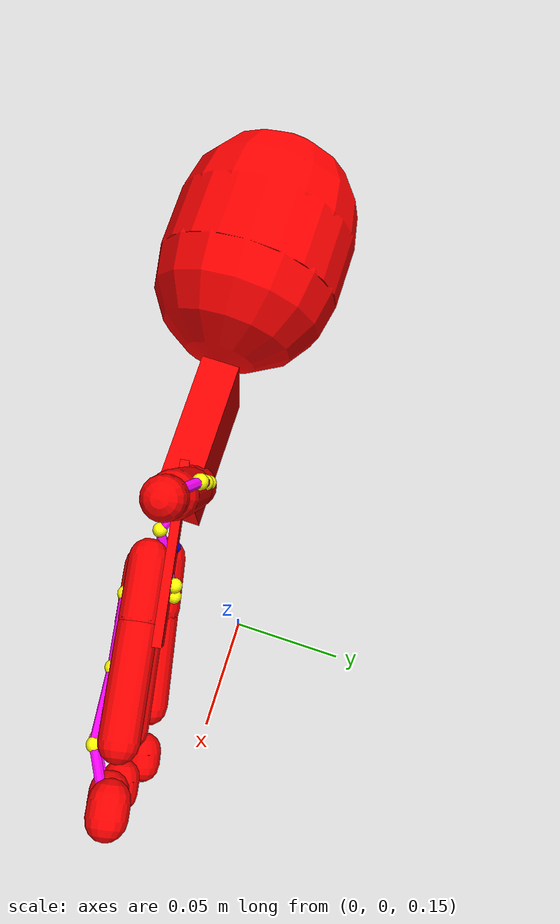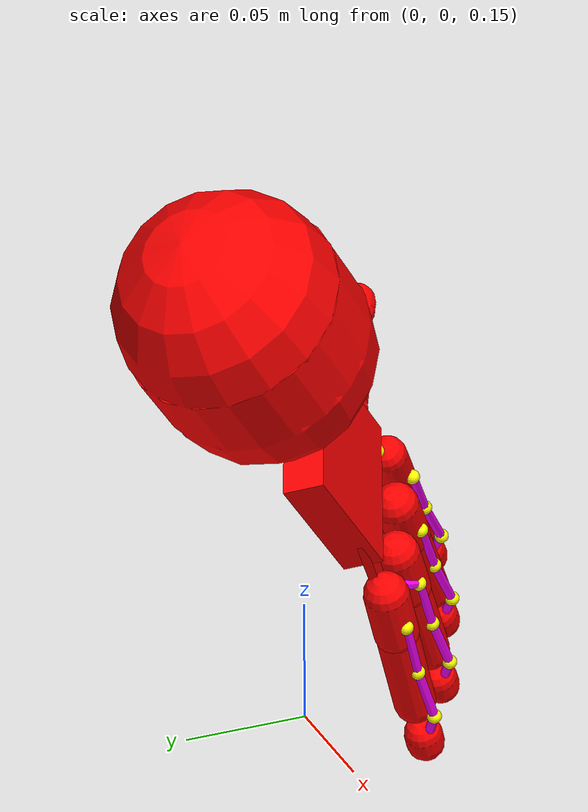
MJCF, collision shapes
<?xml version="1.0"?>
<mujoco model="RH8D Right Hand">
  <compiler angle="radian" meshdir="../meshes"/>

  <option timestep="0.001"
          integrator="implicitfast"
          solver="Newton"
          iterations="200"
          tolerance="1e-10"
          gravity="0 0 -9.81"
          cone="elliptic"
          impratio="1"
          noslip_iterations="0"
          noslip_tolerance="1e-6"/>

  <size njmax="8000" nconmax="1500"/>

  <!-- Default parameters for the simulation -->
  <default>
    <!-- Joint spring model (torsional return springs): open = springref=0 -->
    <joint damping="0.04" frictionloss="0.0008" armature="0.002" limited="true" springref="0"/>

    <geom contype="1" conaffinity="1" condim="6"
          friction="1.0 0.1 0.1"
          solref="0.01 1.0"
          solimp="0.9 0.95 0.001"
          margin="0.0005"/>

    <default class="guide_site">
      <site size="0.0030" rgba="1 1 0 1"/>
    </default>

    <default class="anchor_site">
      <site size="0.0045" rgba="1 0.2 0.2 1"/>
    </default>

    <default class="visual_mesh">
      <geom type="mesh" contype="0" conaffinity="0"/>
    </default>

    <default class="hand_collision">
      <geom type="capsule"
            contype="2" conaffinity="5"
            condim="6"
            friction="0.4 0.05 0.05"
            solref="0.001 1"
            solimp="0.95 0.99 0.001"
            margin="0.0005"
            rgba="1 0 0 0"/>
    </default>
  </default>

  <!-- Asset definitions -->
  <asset>
    <mesh name="base" file="base.stl" scale="0.001 0.001 0.001"/>
    <mesh name="forearm" file="forearm.stl" scale="0.001 0.001 0.001"/>
    <mesh name="palm_axis" file="palm_axis.stl" scale="0.001 0.001 0.001"/>
    <mesh name="palm_assembly" file="palm_assembly.stl" scale="0.001 0.001 0.001"/>
    <mesh name="thumb_base" file="thumb_base.stl" scale="0.001 0.001 0.001"/>
    <mesh name="thumb_phalanx" file="thumb_phalanx.stl" scale="0.001 0.001 0.001"/>
    <mesh name="tip" file="tip.stl" scale="0.001 0.001 0.001"/>
    <mesh name="phalanx" file="phalanx.stl" scale="0.001 0.001 0.001"/>
  </asset>

  <!-- World body definitions -->
  <worldbody>
    <geom class="visual_mesh"
          pos="-0.230 -0.0385 0.22"
          quat="0 0.707107 0 0.707107"
          rgba="0.74902 0.74902 0.74902 1"
          mesh="base"/>

    <body name="forearm:1" pos="-0.230 -0.0385 0.22" quat="-0.5 0.5 -0.5 -0.5">
      <inertial pos="1.87963e-07 -0.0656522 -0.00271352"
                quat="0.498346 0.501671 -0.501575 0.498397"
                mass="0.740385"
                diaginertia="0.00146215 0.00130925 0.000680264"/>
      <joint name="forearm:1--base:1" axis="0 -1 0" range="-1.5708 1.5708" damping="0.08" frictionloss="0.005"/>
      <geom class="visual_mesh" rgba="0.74902 0.74902 0.74902 1" mesh="forearm"/>
      <geom name="collision_forearm" class="hand_collision" type="capsule"
            fromto="0 -0.085 -0.005   0 -0.055 -0.005" size="0.0425" rgba="1 0 0 0"/>

      <body name="palm_axis:1" pos="0 -0.165 -0.01275">
        <inertial pos="0 0.008585 0.0125"
                  quat="0 0.707107 0 0.707107"
                  mass="0.0509809"
                  diaginertia="1.88432e-05 1.37535e-05 9.79681e-06"/>
        <joint name="palm_axis:1--forearm:1" axis="0 0 1" range="-1.5708 1.5708" damping="0.08" frictionloss="0.005"/>
        <geom class="visual_mesh" pos="0 0 0.0125" quat="1 0 0 0" rgba="0.74902 0.74902 0.74902 1" mesh="palm_axis"/>
        <geom name="collision_palm_axis" class="hand_collision" type="box"
              pos="0 0 0.0125" size="0.030 0.030 0.008" rgba="1 0 0 0"/>

        <body name="palm_assembly:1" pos="0.0265 0 0.0125" quat="0.764847 0.63682 0.022682 -0.094633">
          <inertial pos="-0.0428433 -0.00466111 0.0454719"
                    quat="0.48276 0.542533 0.210306 0.654502"
                    mass="0.0820994"
                    diaginertia="9.95214e-05 8.17343e-05 3.63353e-05"/>
          <joint name="palm_assembly:1--palm_axis:1"
                 axis="-0.98106 -0.173648 0.0858319"
                 range="-0.785398 0.785398"
                 damping="0.08" frictionloss="0.005"/>
          <geom class="visual_mesh"
                pos="-0.0586362 -0.00572413 0.0653212"
                quat="1 0 0 0"
                rgba="0.74902 0.74902 0.74902 1"
                mesh="palm_assembly"/>

          <!-- Palm collision -->
          <geom name="collision_palm" class="hand_collision" type="box"
                pos="-0.03 -0.01 0.055"
                euler="-1.57 -0.1 0.1"
                size="0.04 0.035 0.0018"
                rgba="1 0 0 0"/>

          <!-- Tendon origins -->
          <site name="palm_flexor_origin_idx"        class="guide_site" pos="-0.052 -0.009 0.0685"/>
          <site name="palm_flexor_origin_mid"        class="guide_site" pos="-0.032 -0.009 0.068"/>
          <site name="palm_flexor_origin_ring_small" class="guide_site" pos=" 0.006 -0.009 0.053"/>
          <site name="palm_flexor_origin_thumb"      class="guide_site" pos="-0.034 -0.007 0.07"/>

          <site name="palm_range_site" pos="-0.0210 -0.009 0.0475" euler="-1.5708 0 0" size="0.003" rgba="0 0 1 1"/>

          <!-- Thumb -->
          <body name="Thumb_axis" pos="-0.0403593 -0.0128548 0.0384218" quat="0.488081 0.532913 -0.239627 -0.648352">
            <inertial pos="7.36614e-07 -0.0127284 0.0077996"
                      quat="0.90682 0.421512 -0.00114761 0.00208364"
                      mass="0.00876232"
                      diaginertia="7.9766e-07 7.76944e-07 4.56571e-07"/>
            <joint name="Thumb_axis--palm_assembly:1" axis="0 -0.866025 0.5" range="-0.001 1.5708" damping="0.10" frictionloss="0.005"/>
            <geom class="visual_mesh" pos="-2.0491e-07 -0.0143541 0.0211785" rgba="0.74902 0.74902 0.74902 1" mesh="thumb_base"/>

            <site name="th_guide_p" class="guide_site" pos="0.000 0.0060 0.0120"/>

            <body name="Thumb_Methacarpal" pos="-0.00512514 -0.0143543 0.0211784" quat="0 -1 0 0">
              <inertial pos="0.00506187 -0.00020374 -0.0087338"
                        quat="0.707662 0.0382635 -0.0379957 0.70449"
                        mass="0.00441372"
                        diaginertia="4.34031e-07 4.06754e-07 1.50155e-07"/>
              <joint name="Thumb_Methacarpal--Thumb_axis" axis="-1 0 0" range="0 1.5708" damping="0.10" stiffness="0.65"/>
              <geom class="visual_mesh" pos="0.00506254 1.23613e-07 -0.010793" rgba="0.74902 0.74902 0.74902 1" mesh="thumb_phalanx"/>
              <geom name="collision_thumb_meta" class="hand_collision" type="capsule"
                    fromto="0.005 0 0.002   0.005 0 0.026" size="0.009" rgba="1 0 0 0"/>

              <site name="th_guide_m" class="guide_site" pos="0.000 0.0060 0.0100"/>

              <body name="Thumb_Proximal" pos="-0.000562562 -2.35897e-07 -0.0215861">
                <inertial pos="0.00506186 -0.000203737 -0.0087338"
                          quat="0.707662 0.0382635 -0.0379957 0.70449"
                          mass="0.00441372"
                          diaginertia="4.34031e-07 4.06754e-07 1.50155e-07"/>
                <joint name="Thumb_Proximal--Thumb_Methacarpal" axis="-1 0 0" range="0 1.5708" damping="0.08" stiffness="0.55"/>
                <geom class="visual_mesh" pos="0.00506253 1.26601e-07 -0.010793" rgba="0.74902 0.74902 0.74902 1" mesh="thumb_phalanx"/>
                <geom name="collision_thumb_prox" class="hand_collision" type="capsule"
                      fromto="0.005 0 -0.016   0.005 0 0.026" size="0.009" rgba="1 0 0 0"/>

                <site name="th_guide_d" class="guide_site" pos="0.000 0.0075 0.0080"/>

                <body name="Thumb_Distal" pos="-6.23674e-05 6.16563e-07 -0.0215858">
                  <inertial pos="0.00560256 -0.00262057 -0.0121248"
                            quat="0.634633 -0.0915234 0.0968285 0.761242"
                            mass="0.00650951"
                            diaginertia="5.45458e-07 5.01126e-07 3.14326e-07"/>
                  <joint name="Thumb_Distal--Thumb_Proximal" axis="-1 0 0" range="0 1.5708" damping="0.06" stiffness="0.45"/>
                  <geom class="visual_mesh" pos="0.00506251 -1.31623e-07 0" rgba="0.74902 0.74902 0.74902 1" mesh="tip"/>

                  <site name="th_guide_distal" class="guide_site" pos="0.000 0.0090 0.0060"/>
                  <site name="th_anchor" class="anchor_site" pos="0.0045 0.0015 -0.012"/>

                  <body name="Thumb_TipDummy" pos="0 0 0">
                    <inertial pos="0 0 0" mass="1e-6" diaginertia="1e-12 1e-12 1e-12"/>
                    <geom name="collision_thumb_tip" class="hand_collision" type="capsule"
                          fromto="0.005 0 -0.016   0.005 0 -0.01" size="0.00778" rgba="1 0 0 0"/>
                    <site name="thumb_tip_force_site" pos="0.005 -0.0015 -0.014" quat="0 0 1 1" size="0.00778" rgba="1 0 0 0"/>
                  </body>
                </body>
              </body>
            </body>
          </body>

          <!-- Index Finger -->
          <body name="Index_Proximal" pos="-0.0482113 -0.0207166 0.0857786" quat="0 1 0 0">
            <inertial pos="-0.00506278 -0.000180346 -0.0109169"
                      quat="0.709609 0.0289913 -0.0286909 0.703414"
                      mass="0.00525864"
                      diaginertia="5.65636e-07 5.33996e-07 1.82249e-07"/>
            <joint name="Index_Proximal--palm_assembly:1" axis="-1 0 0" range="0 1.5708" damping="0.10" stiffness="0.65"/>
            <geom class="visual_mesh" pos="-0.00506263 -1.44878e-07 -0.0129367" rgba="0.74902 0.74902 0.74902 1" mesh="phalanx"/>
            <geom name="collision_idx_prox" class="hand_collision" type="capsule"
                  fromto="-0.005 0 0.002   -0.005 0 0.026" size="0.00778" rgba="1 0 0 0"/>

            <site name="idx_guide_p" class="guide_site" pos="0.000 0.0065 0.0120"/>

            <body name="Index_Middle" pos="6.24645e-05 0 -0.0258748">
              <inertial pos="-0.00506279 -0.000180375 -0.0109169"
                        quat="0.709609 0.0289913 -0.0286909 0.703414"
                        mass="0.00525864"
                        diaginertia="5.65636e-07 5.33996e-07 1.82249e-07"/>
              <joint name="Index_Middle--Index_Proximal" axis="-1 0 0" range="0 1.5708" damping="0.08" stiffness="0.55"/>
              <geom class="visual_mesh" pos="-0.00506242 0 -0.0129376" rgba="0.74902 0.74902 0.74902 1" mesh="phalanx"/>
              <geom name="collision_idx_mid" class="hand_collision" type="capsule"
                    fromto="-0.005 0 -0.016   -0.005 0 0.026" size="0.00778" rgba="1 0 0 0"/>

              <site name="idx_guide_m" class="guide_site" pos="0.000 0.0065 0.0100"/>

              <body name="Index_Distal" pos="6.2463e-05 0 -0.0258748">
                <inertial pos="-0.00452224 -0.00262003 -0.0121245"
                          quat="0.634633 -0.0915234 0.0968285 0.761242"
                          mass="0.00650951"
                          diaginertia="5.45458e-07 5.01126e-07 3.14326e-07"/>
                <joint name="Index_Distal--Index_Middle" axis="-1 0 0" range="0 1.5708" damping="0.06" stiffness="0.45"/>
                <geom class="visual_mesh" pos="-0.00506253 0 4.01497e-07" rgba="0.74902 0.74902 0.74902 1" mesh="tip"/>

                <site name="idx_guide_d" class="guide_site" pos="0.000 0.0085 0.0080"/>
                <site name="idx_anchor" class="anchor_site" pos="-0.0045 0.0015 -0.012"/>

                <body name="Index_TipDummy" pos="0 0 0">
                  <inertial pos="0 0 0" mass="1e-6" diaginertia="1e-12 1e-12 1e-12"/>
                  <geom name="collision_idx_tip" class="hand_collision" type="capsule"
                        fromto="-0.005 0 -0.016   -0.005 0 -0.01" size="0.00778" rgba="1 0 0 0"/>
                  <site name="index_tip_force_site" pos="-0.005 -0.002 -0.014" quat="0 0 1 1" size="0.00725" rgba="1 0 0 0"/>
                </body>
              </body>
            </body>
          </body>

          <!-- Middle Finger -->
          <body name="Middle_Proximal" pos="-0.0230982 -0.0192207 0.084179" quat="0.00190282 -0.998097 -0.0435779 0.043578">
            <inertial pos="-0.00506279 -0.000180392 -0.0109167"
                      quat="0.709609 0.0289913 -0.0286909 0.703414"
                      mass="0.00525864"
                      diaginertia="5.65636e-07 5.33996e-07 1.82249e-07"/>
            <joint name="Middle_Proximal--palm_assembly:1" axis="-1 0 0" range="0 1.5708" damping="0.10" stiffness="0.65"/>
            <geom class="visual_mesh" pos="-0.00506247 0 -0.0129372" rgba="0.74902 0.74902 0.74902 1" mesh="phalanx"/>
            <geom name="collision_mid_prox" class="hand_collision" type="capsule"
                  fromto="-0.005 0 0.002   -0.005 0 0.026" size="0.009" rgba="1 0 0 0"/>

            <site name="mid_guide_p" class="guide_site" pos="0.000 0.0065 0.0120"/>

            <body name="Middle_Middle" pos="6.24843e-05 -1.52847e-07 -0.0258742">
              <inertial pos="-0.00506283 -0.000180213 -0.0109177"
                        quat="0.709609 0.0289913 -0.0286909 0.703414"
                        mass="0.00525864"
                        diaginertia="5.65636e-07 5.33996e-07 1.82249e-07"/>
              <joint name="Middle_Middle--Middle_Proximal" axis="-1 0 0" range="0 1.5708" damping="0.08" stiffness="0.55"/>
              <geom class="visual_mesh" pos="-0.00506251 1.09878e-07 -0.0129382" rgba="0.74902 0.74902 0.74902 1" mesh="phalanx"/>
              <geom name="collision_mid_mid" class="hand_collision" type="capsule"
                    fromto="-0.005 0 -0.016   -0.005 0 0.026" size="0.0085" rgba="1 0 0 0"/>

              <site name="mid_guide_m" class="guide_site" pos="0.000 0.0065 0.0100"/>

              <body name="Middle_Distal" pos="6.24995e-05 0 -0.0258752">
                <inertial pos="-0.00452227 -0.00261993 -0.0121249"
                          quat="0.634633 -0.0915234 0.0968285 0.761242"
                          mass="0.00650951"
                          diaginertia="5.45458e-07 5.01126e-07 3.14326e-07"/>
                <joint name="Middle_Distal--Middle_Middle" axis="-1 0 0" range="0 1.5708" damping="0.06" stiffness="0.45"/>
                <geom class="visual_mesh" pos="-0.00506248 0 -6.09795e-07" rgba="0.74902 0.74902 0.74902 1" mesh="tip"/>

                <site name="mid_guide_d" class="guide_site" pos="0.000 0.0085 0.0080"/>
                <site name="mid_anchor" class="anchor_site" pos="-0.0045 0.0015 -0.012"/>

                <body name="Middle_TipDummy" pos="0 0 0">
                  <inertial pos="0 0 0" mass="1e-6" diaginertia="1e-12 1e-12 1e-12"/>
                  <geom name="collision_mid_tip" class="hand_collision" type="capsule"
                        fromto="-0.005 0 -0.016   -0.005 0 -0.01" size="0.00778" rgba="1 0 0 0"/>
                  <site name="middle_tip_force_site" pos="-0.005 -0.002 -0.014" quat="0 0 1 1" size="0.00725" rgba="1 0 0 0"/>
                </body>
              </body>
            </body>
          </body>

          <!-- Ring Finger -->
          <body name="Ring_Proximal" pos="0.000973217 -0.0139442 0.0805959" quat="-7.86943e-05 -0.987791 -0.129626 0.0864102">
            <inertial pos="-0.00506284 -0.000180314 -0.0109171"
                      quat="0.709609 0.0289913 -0.0286909 0.703414"
                      mass="0.00525864"
                      diaginertia="5.65636e-07 5.33996e-07 1.82249e-07"/>
            <joint name="Ring_Proximal--palm_assembly:1" axis="-1 0 0" range="0 1.5708" damping="0.10" stiffness="0.65"/>
            <geom class="visual_mesh" pos="-0.00506248 0 -0.0129378" rgba="0.74902 0.74902 0.74902 1" mesh="phalanx"/>
            <geom name="collision_ring_prox" class="hand_collision" type="capsule"
                  fromto="-0.005 0 0.002   -0.005 0 0.026" size="0.009" rgba="1 0 0 0"/>

            <site name="ring_guide_p" class="guide_site" pos="0.000 0.0065 0.0120"/>

            <body name="Ring_Middle" pos="6.24428e-05 0 -0.0258755">
              <inertial pos="-0.00506274 -0.000180305 -0.0109171"
                        quat="0.709609 0.0289913 -0.0286909 0.703414"
                        mass="0.00525864"
                        diaginertia="5.65636e-07 5.33996e-07 1.82249e-07"/>
              <joint name="Ring_Middle--Ring_Proximal" axis="-1 0 0" range="0 1.5708" damping="0.08" stiffness="0.35"/>
              <geom class="visual_mesh" pos="-0.00506238 -1.10193e-07 -0.0129369" rgba="0.74902 0.74902 0.74902 1" mesh="phalanx"/>
              <geom name="collision_ring_mid" class="hand_collision" type="capsule"
                    fromto="-0.005 0 -0.016   -0.005 0 0.026" size="0.0085" rgba="1 0 0 0"/>

              <site name="ring_guide_m" class="guide_site" pos="0.000 0.0065 0.0100"/>

              <body name="Ring_Distal" pos="6.25413e-05 0 -0.0258745">
                <inertial pos="-0.00452232 -0.00261989 -0.0121254"
                          quat="0.634633 -0.0915234 0.0968285 0.761242"
                          mass="0.00650951"
                          diaginertia="5.45458e-07 5.01126e-07 3.14326e-07"/>
                <joint name="Ring_Distal--Ring_Middle" axis="-1 0 0" range="0 1.5708" damping="0.06" stiffness="0.35"/>
                <geom class="visual_mesh" pos="-0.00506254 1.36101e-07 -7.35729e-07" rgba="0.74902 0.74902 0.74902 1" mesh="tip"/>

                <site name="ring_guide_d" class="guide_site" pos="0.000 0.0085 0.0080"/>
                <site name="ring_anchor" class="anchor_site" pos="-0.0045 0.0015 -0.012"/>

                <body name="Ring_TipDummy" pos="0 0 0">
                  <inertial pos="0 0 0" mass="1e-6" diaginertia="1e-12 1e-12 1e-12"/>
                  <geom name="collision_ring_tip" class="hand_collision" type="capsule"
                        fromto="-0.005 0 -0.016   -0.005 0 -0.01" size="0.00778" rgba="1 0 0 0"/>
                  <site name="ring_tip_force_site" pos="-0.005 -0.002 -0.014" quat="0 0 1 1" size="0.00725" rgba="1 0 0 0"/>
                </body>
              </body>
            </body>
          </body>

          <!-- Small Finger -->
          <body name="Small_Proximal" pos="0.0235505 -0.00577399 0.0699045" quat="-0.00757449 -0.976383 -0.173483 0.128543">
            <inertial pos="-0.00506278 -0.00018031 -0.0109171"
                      quat="0.709609 0.0289913 -0.0286909 0.703414"
                      mass="0.00525864"
                      diaginertia="5.65636e-07 5.33996e-07 1.82249e-07"/>
            <joint name="Small_Proximal--palm_assembly:1" axis="-1 0 0" range="0 1.5708" damping="0.10" stiffness="0.3"/>
            <geom class="visual_mesh" pos="-0.00506256 0 -0.0129378" rgba="0.74902 0.74902 0.74902 1" mesh="phalanx"/>
            <geom name="collision_sml_prox" class="hand_collision" type="capsule"
                  fromto="-0.005 0 0.002   -0.005 0 0.026" size="0.009" rgba="1 0 0 0"/>

            <site name="sml_guide_p" class="guide_site" pos="0.000 0.0065 0.0120"/>

            <body name="Small_Middle" pos="6.24423e-05 0 -0.0258752">
              <inertial pos="-0.00506278 -0.00018031 -0.0109171"
                        quat="0.709609 0.0289913 -0.0286909 0.703414"
                        mass="0.00525864"
                        diaginertia="5.65636e-07 5.33996e-07 1.82249e-07"/>
              <joint name="Small_Middle--Small_Proximal" axis="-1 0 0" range="0 1.5708" damping="0.08" stiffness="0.1"/>
              <geom class="visual_mesh" pos="-0.00506255 0 -0.0129378" rgba="0.74902 0.74902 0.74902 1" mesh="phalanx"/>
              <geom name="collision_sml_mid" class="hand_collision" type="capsule"
                    fromto="-0.005 0 -0.016   -0.005 0 0.026" size="0.0085" rgba="1 0 0 0"/>

              <site name="sml_guide_m" class="guide_site" pos="0.000 0.0065 0.0100"/>

              <body name="Small_Distal" pos="6.2445e-05 0 -0.0258753">
                <inertial pos="-0.00452232 -0.00262 -0.0121245"
                          quat="0.634633 -0.0915234 0.0968285 0.761242"
                          mass="0.00650951"
                          diaginertia="5.45458e-07 5.01126e-07 3.14326e-07"/>
                <joint name="Small_Distal--Small_Middle" axis="-1 0 0" range="0 1.5708" damping="0.06" stiffness="0.15"/>
                <geom class="visual_mesh" pos="-0.00506244 0 0" rgba="0.74902 0.74902 0.74902 1" mesh="tip"/>

                <site name="sml_guide_d" class="guide_site" pos="0.000 0.0085 0.0080"/>
                <site name="sml_anchor" class="anchor_site" pos="-0.0045 0.0015 -0.012"/>

                <body name="Small_TipDummy" pos="0 0 0">
                  <inertial pos="0 0 0" mass="1e-6" diaginertia="1e-12 1e-12 1e-12"/>
                  <geom name="collision_sml_tip" class="hand_collision" type="capsule"
                        fromto="-0.005 0 -0.016   -0.005 0 -0.01" size="0.00778" rgba="1 0 0 0"/>
                  <site name="small_tip_force_site" pos="-0.005 -0.002 -0.014" quat="0 0 1 1" size="0.00725" rgba="1 0 0 0"/>
                </body>
              </body>
            </body>
          </body>

        </body>
      </body>
    </body>
  </worldbody>

  <!-- RH8D: Spatial tendons -->
  <tendon>
    <spatial name="idx_flex_spatial" rgba="1 0 1 1" width="0.002" damping="6" frictionloss="0.3">
      <site site="palm_flexor_origin_idx"/>
      <site site="idx_guide_p"/>
      <site site="idx_guide_m"/>
      <site site="idx_guide_d"/>
      <site site="idx_anchor"/>
    </spatial>

    <spatial name="mid_flex_spatial" rgba="1 0 1 1" width="0.002" damping="6" frictionloss="0.3">
      <site site="palm_flexor_origin_mid"/>
      <site site="mid_guide_p"/>
      <site site="mid_guide_m"/>
      <site site="mid_guide_d"/>
      <site site="mid_anchor"/>
    </spatial>

    <spatial name="ring_flex_spatial" rgba="1 0 1 1" width="0.002" damping="6" frictionloss="0.3">
      <site site="palm_flexor_origin_ring_small"/>
      <site site="ring_guide_p"/>
      <site site="ring_guide_m"/>
      <site site="ring_guide_d"/>
      <site site="ring_anchor"/>
    </spatial>

    <spatial name="sml_flex_spatial" rgba="1 0 1 1" width="0.002" damping="6" frictionloss="0.3">
      <site site="palm_flexor_origin_ring_small"/>
      <site site="sml_guide_p"/>
      <site site="sml_guide_m"/>
      <site site="sml_guide_d"/>
      <site site="sml_anchor"/>
    </spatial>

    <spatial name="th_flex_spatial" rgba="1 0 1 1" width="0.002" damping="6" frictionloss="0.3">
      <site site="palm_flexor_origin_thumb"/>
      <site site="th_guide_p"/>
      <site site="th_guide_m"/>
      <site site="th_guide_d"/>
      <site site="th_guide_distal"/>
      <site site="th_anchor"/>
    </spatial>
  </tendon>

  <!-- RH8D: ring and small finger are driven by the same actuator -->
  <equality>
    <tendon tendon1="sml_flex_spatial" tendon2="ring_flex_spatial"
            polycoef="0 1 0 0 0"
            solref="0.08 1.0"
            solimp="0.90 0.99 0.002"/>
  </equality>

  <!-- Actuators for RH8D -->
  <actuator>
    <!-- RH8D: wrist/palm actuators -->
    <position name="pos_forearm" joint="forearm:1--base:1"
              kp="5" kv="1" forcelimited="true" forcerange="-5 5"
              ctrllimited="true" ctrlrange="-1.5708 1.5708"/>

    <position name="pos_palm_axis" joint="palm_axis:1--forearm:1"
              kp="5" kv="1" forcelimited="true" forcerange="-5 5"
              ctrllimited="true" ctrlrange="-1.5708 1.5708"/>

    <position name="pos_palm_assembly" joint="palm_assembly:1--palm_axis:1"
              kp="5" kv="1" forcelimited="true" forcerange="-5 5"
              ctrllimited="true" ctrlrange="-0.785398 0.785398"/>

    <position name="pos_thumb_axis" joint="Thumb_axis--palm_assembly:1"
              kp="5" kv="1" forcelimited="true" forcerange="-5 5"
              ctrllimited="true" ctrlrange="0.0 1.5708"/>

    <!-- RH8D: Tendon driven finger actuators -->
    <position name="pos_index_tendon" tendon="idx_flex_spatial"
              kp="80" dampratio="0.5" forcelimited="true" forcerange="0 180"
              ctrllimited="true" ctrlrange="0.0 1.5708"/>

    <position name="pos_middle_tendon" tendon="mid_flex_spatial"
              kp="80" dampratio="0.5" forcelimited="true" forcerange="0 180"
              ctrllimited="true" ctrlrange="0.0 1.5708"/>

    <position name="pos_ring_small_tendon" tendon="ring_flex_spatial"
              kp="80" dampratio="0.5" forcelimited="true" forcerange="0 180"
              ctrllimited="true" ctrlrange="0.0 1.5708"/>

    <position name="pos_thumb_tendon" tendon="th_flex_spatial"
              kp="60" dampratio="0.5" forcelimited="true" forcerange="0 180"
              ctrllimited="true" ctrlrange="0.0 1.5708"/>
  </actuator>

  <!-- RH8D: Sensors including TOF and force sensors -->
  <sensor>
    <!-- Tendon positions -->
    <tendonpos name="len_index"  tendon="idx_flex_spatial"/>
    <tendonpos name="len_middle" tendon="mid_flex_spatial"/>
    <tendonpos name="len_ring"   tendon="ring_flex_spatial"/>
    <tendonpos name="len_small"  tendon="sml_flex_spatial"/>
    <tendonpos name="len_thumb"  tendon="th_flex_spatial"/>

    <!-- Tendon actuator forces -->
    <actuatorfrc name="frc_index"  actuator="pos_index_tendon"/>
    <actuatorfrc name="frc_middle" actuator="pos_middle_tendon"/>
    <actuatorfrc name="frc_ring"   actuator="pos_ring_small_tendon"/>
    <actuatorfrc name="frc_thumb"  actuator="pos_thumb_tendon"/>

    <!-- Palm distance sensor -->
    <rangefinder name="palm_range" site="palm_range_site"/>

    <!-- 3-axis fingertip force sensors -->
    <force name="thumb_tip_force"  site="thumb_tip_force_site"/>
    <force name="index_tip_force"  site="index_tip_force_site"/>
    <force name="middle_tip_force" site="middle_tip_force_site"/>
    <force name="ring_tip_force"   site="ring_tip_force_site"/>
    <force name="small_tip_force"  site="small_tip_force_site"/>
  </sensor>

  <!-- RH8D: Contact excludes -->
  <contact>
    <exclude body1="forearm:1" body2="palm_axis:1"/>
    <exclude body1="palm_axis:1" body2="palm_assembly:1"/>
    <exclude body1="Thumb_axis" body2="Thumb_Methacarpal"/>
    <exclude body1="Thumb_Methacarpal" body2="Thumb_Proximal"/>
    <exclude body1="Thumb_Proximal" body2="Thumb_Distal"/>
    <exclude body1="Index_Proximal" body2="Index_Middle"/>
    <exclude body1="Index_Middle" body2="Index_Distal"/>
    <exclude body1="Middle_Proximal" body2="Middle_Middle"/>
    <exclude body1="Middle_Middle" body2="Middle_Distal"/>
    <exclude body1="Ring_Proximal" body2="Ring_Middle"/>
    <exclude body1="Ring_Middle" body2="Ring_Distal"/>
    <exclude body1="Small_Proximal" body2="Small_Middle"/>
    <exclude body1="Small_Middle" body2="Small_Distal"/>

    <exclude body1="palm_assembly:1" body2="Index_Proximal"/>
    <exclude body1="palm_assembly:1" body2="Index_Middle"/>
    <exclude body1="palm_assembly:1" body2="Index_Distal"/>
    <exclude body1="palm_assembly:1" body2="Middle_Proximal"/>
    <exclude body1="palm_assembly:1" body2="Middle_Middle"/>
    <exclude body1="palm_assembly:1" body2="Middle_Distal"/>
    <exclude body1="palm_assembly:1" body2="Ring_Proximal"/>
    <exclude body1="palm_assembly:1" body2="Ring_Middle"/>
    <exclude body1="palm_assembly:1" body2="Ring_Distal"/>
    <exclude body1="palm_assembly:1" body2="Small_Proximal"/>
    <exclude body1="palm_assembly:1" body2="Small_Middle"/>
    <exclude body1="palm_assembly:1" body2="Small_Distal"/>
    <exclude body1="palm_assembly:1" body2="Thumb_axis"/>
    <exclude body1="palm_assembly:1" body2="Thumb_Methacarpal"/>
    <exclude body1="palm_assembly:1" body2="Thumb_Proximal"/>
    <exclude body1="palm_assembly:1" body2="Thumb_Distal"/>
  </contact>

</mujoco>
